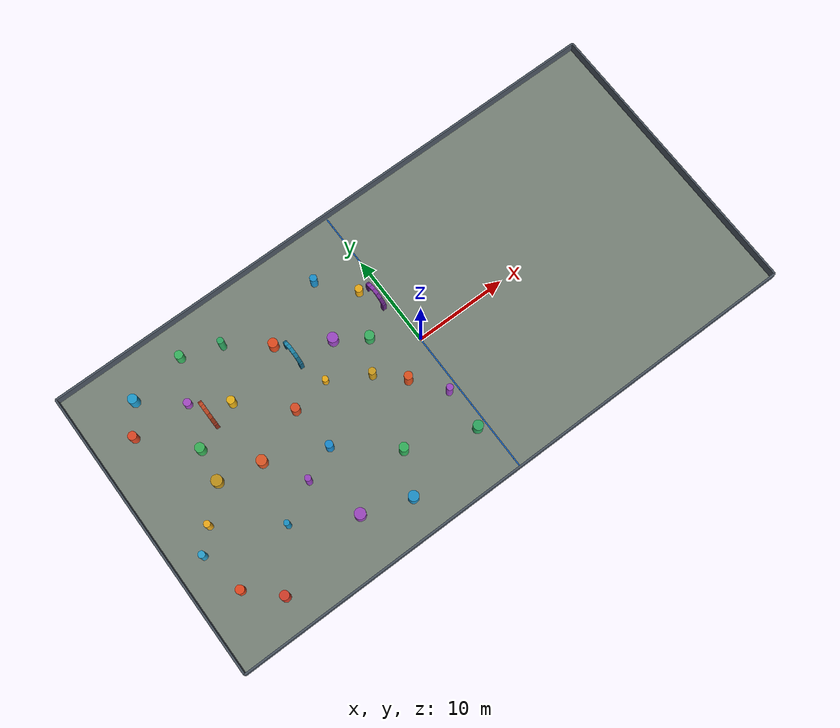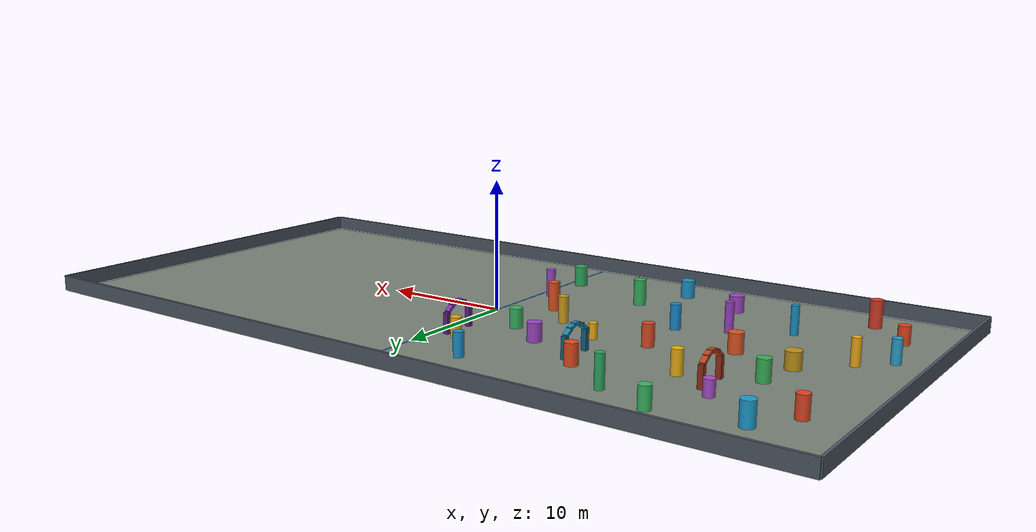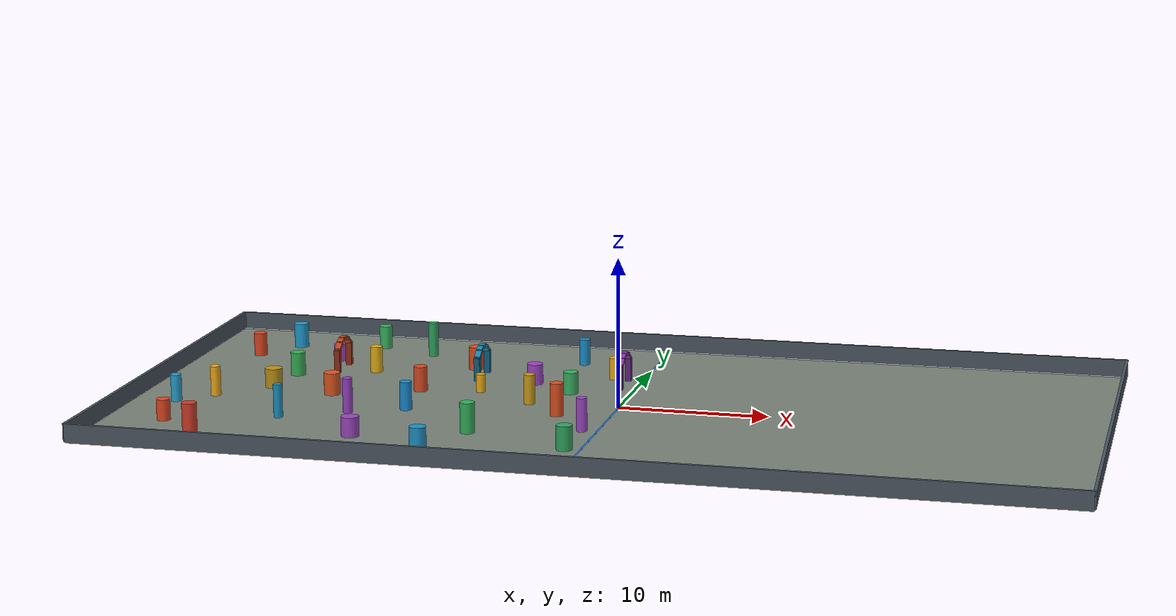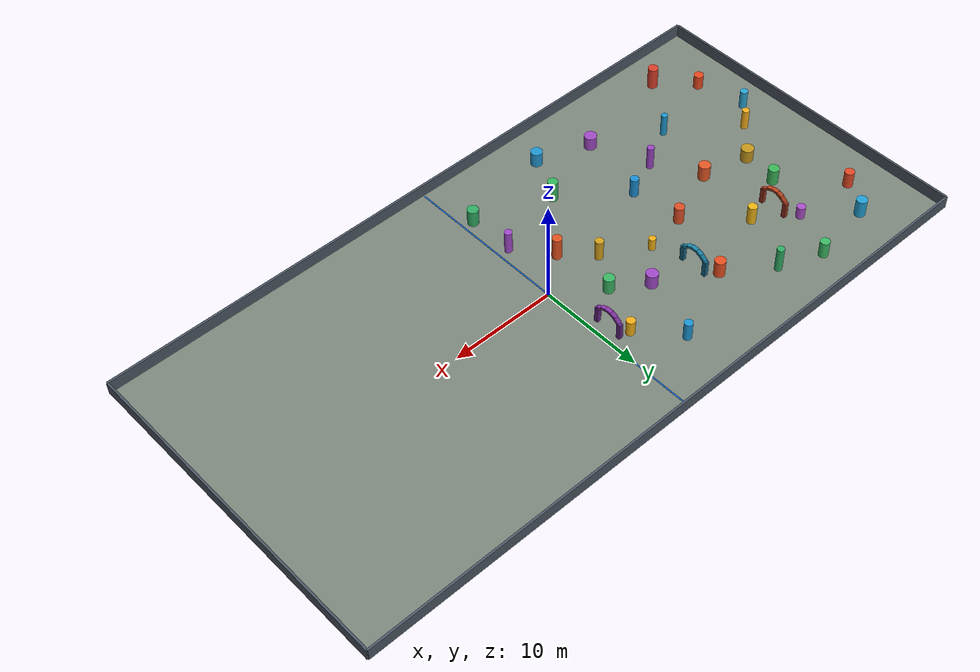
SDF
<sdf version="1.9">
 <world name="tower">
  <physics name="physics" type="ignored">
   <max_step_size>0.001</max_step_size>
   <real_time_factor>1.0</real_time_factor>
  </physics>
  <gravity>0 0 -9.81</gravity>
  <plugin filename="ignition-gazebo-physics-system" name="ignition::gazebo::systems::Physics"/>
  <plugin filename="ignition-gazebo-user-commands-system" name="ignition::gazebo::systems::UserCommands"/>
  <plugin filename="ignition-gazebo-scene-broadcaster-system" name="ignition::gazebo::systems::SceneBroadcaster"/>
  <plugin filename="ignition-gazebo-sensors-system" name="ignition::gazebo::systems::Sensors">
   <render_engine>ogre2</render_engine>
  </plugin>
  <scene>
   <ambient>0.45 0.45 0.45 1</ambient>
   <background>0.72 0.80 0.88 1</background>
   <shadows>true</shadows>
  </scene>
  <light name="sun" type="directional">
   <pose>0 0 20 0 0 0</pose>
   <diffuse>0.9 0.9 0.9 1</diffuse>
   <direction>-0.5 0.1 -0.9</direction>
  </light>
  <model name="test_ground">
   <static>true</static>
   <link name="ground">
    <collision name="collision">
     <geometry><plane><normal>0 0 1</normal><size>64 32</size></plane></geometry>
    </collision>
    <visual name="visual">
     <geometry><plane><normal>0 0 1</normal><size>64 32</size></plane></geometry>
     <material><ambient>0.48 0.52 0.48 1</ambient><diffuse>0.48 0.52 0.48 1</diffuse></material>
    </visual>
   </link>
  </model>
  <model name="arena_boundaries">
   <static>true</static>
   <link name="north_wall">
    <pose>0 16 0.60 0 0 0</pose>
    <collision name="collision"><geometry><box><size>64 0.20 1.20</size></box></geometry></collision>
    <visual name="visual">
     <geometry><box><size>64 0.20 1.20</size></box></geometry>
     <material><diffuse>0.30 0.34 0.39 1</diffuse></material>
    </visual>
   </link>
   <link name="south_wall">
    <pose>0 -16 0.60 0 0 0</pose>
    <collision name="collision"><geometry><box><size>64 0.20 1.20</size></box></geometry></collision>
    <visual name="visual">
     <geometry><box><size>64 0.20 1.20</size></box></geometry>
     <material><diffuse>0.30 0.34 0.39 1</diffuse></material>
    </visual>
   </link>
   <link name="west_wall">
    <pose>-32 0 0.60 0 0 0</pose>
    <collision name="collision"><geometry><box><size>0.20 32 1.20</size></box></geometry></collision>
    <visual name="visual">
     <geometry><box><size>0.20 32 1.20</size></box></geometry>
     <material><diffuse>0.30 0.34 0.39 1</diffuse></material>
    </visual>
   </link>
   <link name="east_wall">
    <pose>32 0 0.60 0 0 0</pose>
    <collision name="collision"><geometry><box><size>0.20 32 1.20</size></box></geometry></collision>
    <visual name="visual">
     <geometry><box><size>0.20 32 1.20</size></box></geometry>
     <material><diffuse>0.30 0.34 0.39 1</diffuse></material>
    </visual>
   </link>
  </model>
  <model name="zone_divider">
   <static>true</static>
   <pose>0 0 0.006 0 0 0</pose>
   <link name="stripe">
    <visual name="visual">
     <geometry><box><size>0.12 31.6 0.01</size></box></geometry>
     <material><ambient>0.10 0.45 0.90 1</ambient><diffuse>0.10 0.45 0.90 1</diffuse></material>
    </visual>
   </link>
  </model>
  <model name="flat_cylinder_field">
   <static>true</static>
   <link name="cylinder_01">
    <pose>-28 -9.5 0.70 0 0 0</pose>
    <collision name="collision">
     <geometry><cylinder><radius>0.45</radius><length>1.40</length></cylinder></geometry>
    </collision>
    <visual name="visual">
     <geometry><cylinder><radius>0.45</radius><length>1.40</length></cylinder></geometry>
     <material><diffuse>0.90 0.28 0.12 1</diffuse></material>
    </visual>
   </link>
   <link name="cylinder_02">
    <pose>-27 -2.8 1.00 0 0 0</pose>
    <collision name="collision">
     <geometry><cylinder><radius>0.34</radius><length>2.00</length></cylinder></geometry>
    </collision>
    <visual name="visual">
     <geometry><cylinder><radius>0.34</radius><length>2.00</length></cylinder></geometry>
     <material><diffuse>0.95 0.68 0.10 1</diffuse></material>
    </visual>
   </link>
   <link name="cylinder_03">
    <pose>-26 11.5 0.85 0 0 0</pose>
    <collision name="collision">
     <geometry><cylinder><radius>0.50</radius><length>1.70</length></cylinder></geometry>
    </collision>
    <visual name="visual">
     <geometry><cylinder><radius>0.50</radius><length>1.70</length></cylinder></geometry>
     <material><diffuse>0.12 0.62 0.82 1</diffuse></material>
    </visual>
   </link>
   <link name="cylinder_04">
    <pose>-23.5 3.7 0.80 0 0 0</pose>
    <collision name="collision">
     <geometry><cylinder><radius>0.50</radius><length>1.60</length></cylinder></geometry>
    </collision>
    <visual name="visual">
     <geometry><cylinder><radius>0.50</radius><length>1.60</length></cylinder></geometry>
     <material><diffuse>0.22 0.70 0.34 1</diffuse></material>
    </visual>
   </link>
   <link name="cylinder_05">
    <pose>-22 8.2 0.60 0 0 0</pose>
    <collision name="collision">
     <geometry><cylinder><radius>0.40</radius><length>1.20</length></cylinder></geometry>
    </collision>
    <visual name="visual">
     <geometry><cylinder><radius>0.40</radius><length>1.20</length></cylinder></geometry>
     <material><diffuse>0.66 0.30 0.78 1</diffuse></material>
    </visual>
   </link>
   <link name="cylinder_06">
    <pose>-21 -7.2 1.10 0 0 0</pose>
    <collision name="collision">
     <geometry><cylinder><radius>0.30</radius><length>2.20</length></cylinder></geometry>
    </collision>
    <visual name="visual">
     <geometry><cylinder><radius>0.30</radius><length>2.20</length></cylinder></geometry>
     <material><diffuse>0.10 0.58 0.78 1</diffuse></material>
    </visual>
   </link>
   <link name="cylinder_07">
    <pose>-19.5 -0.8 0.75 0 0 0</pose>
    <collision name="collision">
     <geometry><cylinder><radius>0.55</radius><length>1.50</length></cylinder></geometry>
    </collision>
    <visual name="visual">
     <geometry><cylinder><radius>0.55</radius><length>1.50</length></cylinder></geometry>
     <material><diffuse>0.88 0.34 0.14 1</diffuse></material>
    </visual>
   </link>
   <link name="cylinder_08">
    <pose>-18.5 5.7 0.90 0 0 0</pose>
    <collision name="collision">
     <geometry><cylinder><radius>0.42</radius><length>1.80</length></cylinder></geometry>
    </collision>
    <visual name="visual">
     <geometry><cylinder><radius>0.42</radius><length>1.80</length></cylinder></geometry>
     <material><diffuse>0.92 0.70 0.08 1</diffuse></material>
    </visual>
   </link>
   <link name="cylinder_09">
    <pose>-16 11.0 1.20 0 0 0</pose>
    <collision name="collision">
     <geometry><cylinder><radius>0.34</radius><length>2.40</length></cylinder></geometry>
    </collision>
    <visual name="visual">
     <geometry><cylinder><radius>0.34</radius><length>2.40</length></cylinder></geometry>
     <material><diffuse>0.18 0.66 0.38 1</diffuse></material>
    </visual>
   </link>
   <link name="cylinder_10">
    <pose>-15 -10.5 0.65 0 0 0</pose>
    <collision name="collision">
     <geometry><cylinder><radius>0.58</radius><length>1.30</length></cylinder></geometry>
    </collision>
    <visual name="visual">
     <geometry><cylinder><radius>0.58</radius><length>1.30</length></cylinder></geometry>
     <material><diffuse>0.62 0.28 0.76 1</diffuse></material>
    </visual>
   </link>
   <link name="cylinder_11">
    <pose>-13.5 -3.5 0.95 0 0 0</pose>
    <collision name="collision">
     <geometry><cylinder><radius>0.40</radius><length>1.90</length></cylinder></geometry>
    </collision>
    <visual name="visual">
     <geometry><cylinder><radius>0.40</radius><length>1.90</length></cylinder></geometry>
     <material><diffuse>0.10 0.55 0.82 1</diffuse></material>
    </visual>
   </link>
   <link name="cylinder_12">
    <pose>-12 8.0 0.80 0 0 0</pose>
    <collision name="collision">
     <geometry><cylinder><radius>0.50</radius><length>1.60</length></cylinder></geometry>
    </collision>
    <visual name="visual">
     <geometry><cylinder><radius>0.50</radius><length>1.60</length></cylinder></geometry>
     <material><diffuse>0.90 0.30 0.12 1</diffuse></material>
    </visual>
   </link>
   <link name="cylinder_13">
    <pose>-10 2.1 0.60 0 0 0</pose>
    <collision name="collision">
     <geometry><cylinder><radius>0.32</radius><length>1.20</length></cylinder></geometry>
    </collision>
    <visual name="visual">
     <geometry><cylinder><radius>0.32</radius><length>1.20</length></cylinder></geometry>
     <material><diffuse>0.94 0.68 0.08 1</diffuse></material>
    </visual>
   </link>
   <link name="cylinder_14">
    <pose>-8 -8.0 1.00 0 0 0</pose>
    <collision name="collision">
     <geometry><cylinder><radius>0.48</radius><length>2.00</length></cylinder></geometry>
    </collision>
    <visual name="visual">
     <geometry><cylinder><radius>0.48</radius><length>2.00</length></cylinder></geometry>
     <material><diffuse>0.20 0.70 0.36 1</diffuse></material>
    </visual>
   </link>
   <link name="cylinder_15">
    <pose>-7 5.0 0.70 0 0 0</pose>
    <collision name="collision">
     <geometry><cylinder><radius>0.55</radius><length>1.40</length></cylinder></geometry>
    </collision>
    <visual name="visual">
     <geometry><cylinder><radius>0.55</radius><length>1.40</length></cylinder></geometry>
     <material><diffuse>0.62 0.28 0.78 1</diffuse></material>
    </visual>
   </link>
   <link name="cylinder_16">
    <pose>-5 11.0 0.90 0 0 0</pose>
    <collision name="collision">
     <geometry><cylinder><radius>0.38</radius><length>1.80</length></cylinder></geometry>
    </collision>
    <visual name="visual">
     <geometry><cylinder><radius>0.38</radius><length>1.80</length></cylinder></geometry>
     <material><diffuse>0.10 0.58 0.82 1</diffuse></material>
    </visual>
   </link>
   <link name="cylinder_17">
    <pose>-3.5 -2.7 1.10 0 0 0</pose>
    <collision name="collision">
     <geometry><cylinder><radius>0.44</radius><length>2.20</length></cylinder></geometry>
    </collision>
    <visual name="visual">
     <geometry><cylinder><radius>0.44</radius><length>2.20</length></cylinder></geometry>
     <material><diffuse>0.88 0.32 0.12 1</diffuse></material>
    </visual>
   </link>
   <link name="cylinder_18">
    <pose>-2 7.5 0.75 0 0 0</pose>
    <collision name="collision">
     <geometry><cylinder><radius>0.40</radius><length>1.50</length></cylinder></geometry>
    </collision>
    <visual name="visual">
     <geometry><cylinder><radius>0.40</radius><length>1.50</length></cylinder></geometry>
     <material><diffuse>0.94 0.68 0.08 1</diffuse></material>
    </visual>
   </link>
   <link name="cylinder_19">
    <pose>-1 -10.5 0.80 0 0 0</pose>
    <collision name="collision">
     <geometry><cylinder><radius>0.52</radius><length>1.60</length></cylinder></geometry>
    </collision>
    <visual name="visual">
     <geometry><cylinder><radius>0.52</radius><length>1.60</length></cylinder></geometry>
     <material><diffuse>0.18 0.66 0.38 1</diffuse></material>
    </visual>
   </link>
   <link name="cylinder_20">
    <pose>-29 -4.8 0.90 0 0 0</pose>
    <collision name="collision">
     <geometry><cylinder><radius>0.36</radius><length>1.80</length></cylinder></geometry>
    </collision>
    <visual name="visual">
     <geometry><cylinder><radius>0.36</radius><length>1.80</length></cylinder></geometry>
     <material><diffuse>0.16 0.64 0.82 1</diffuse></material>
    </visual>
   </link>
   <link name="cylinder_21">
    <pose>-25 -12.5 1.05 0 0 0</pose>
    <collision name="collision">
     <geometry><cylinder><radius>0.48</radius><length>2.10</length></cylinder></geometry>
    </collision>
    <visual name="visual">
     <geometry><cylinder><radius>0.48</radius><length>2.10</length></cylinder></geometry>
     <material><diffuse>0.84 0.24 0.16 1</diffuse></material>
    </visual>
   </link>
   <link name="cylinder_22">
    <pose>-24 0.2 0.65 0 0 0</pose>
    <collision name="collision">
     <geometry><cylinder><radius>0.58</radius><length>1.30</length></cylinder></geometry>
    </collision>
    <visual name="visual">
     <geometry><cylinder><radius>0.58</radius><length>1.30</length></cylinder></geometry>
     <material><diffuse>0.76 0.58 0.10 1</diffuse></material>
    </visual>
   </link>
   <link name="cylinder_23">
    <pose>-20 12.5 0.80 0 0 0</pose>
    <collision name="collision">
     <geometry><cylinder><radius>0.44</radius><length>1.60</length></cylinder></geometry>
    </collision>
    <visual name="visual">
     <geometry><cylinder><radius>0.44</radius><length>1.60</length></cylinder></geometry>
     <material><diffuse>0.22 0.72 0.38 1</diffuse></material>
    </visual>
   </link>
   <link name="cylinder_24">
    <pose>-17 -5.0 1.15 0 0 0</pose>
    <collision name="collision">
     <geometry><cylinder><radius>0.33</radius><length>2.30</length></cylinder></geometry>
    </collision>
    <visual name="visual">
     <geometry><cylinder><radius>0.33</radius><length>2.30</length></cylinder></geometry>
     <material><diffuse>0.60 0.26 0.76 1</diffuse></material>
    </visual>
   </link>
   <link name="cylinder_25">
    <pose>-14 1.4 0.85 0 0 0</pose>
    <collision name="collision">
     <geometry><cylinder><radius>0.46</radius><length>1.70</length></cylinder></geometry>
    </collision>
    <visual name="visual">
     <geometry><cylinder><radius>0.46</radius><length>1.70</length></cylinder></geometry>
     <material><diffuse>0.86 0.30 0.14 1</diffuse></material>
    </visual>
   </link>
   <link name="cylinder_26">
    <pose>-10 -12.2 0.70 0 0 0</pose>
    <collision name="collision">
     <geometry><cylinder><radius>0.54</radius><length>1.40</length></cylinder></geometry>
    </collision>
    <visual name="visual">
     <geometry><cylinder><radius>0.54</radius><length>1.40</length></cylinder></geometry>
     <material><diffuse>0.12 0.58 0.80 1</diffuse></material>
    </visual>
   </link>
   <link name="cylinder_27">
    <pose>-6 -0.2 1.00 0 0 0</pose>
    <collision name="collision">
     <geometry><cylinder><radius>0.38</radius><length>2.00</length></cylinder></geometry>
    </collision>
    <visual name="visual">
     <geometry><cylinder><radius>0.38</radius><length>2.00</length></cylinder></geometry>
     <material><diffuse>0.82 0.62 0.10 1</diffuse></material>
    </visual>
   </link>
   <link name="cylinder_28">
    <pose>-4 3.0 0.75 0 0 0</pose>
    <collision name="collision">
     <geometry><cylinder><radius>0.50</radius><length>1.50</length></cylinder></geometry>
    </collision>
    <visual name="visual">
     <geometry><cylinder><radius>0.50</radius><length>1.50</length></cylinder></geometry>
     <material><diffuse>0.22 0.70 0.38 1</diffuse></material>
    </visual>
   </link>
   <link name="cylinder_29">
    <pose>-1 -6.0 1.10 0 0 0</pose>
    <collision name="collision">
     <geometry><cylinder><radius>0.35</radius><length>2.20</length></cylinder></geometry>
    </collision>
    <visual name="visual">
     <geometry><cylinder><radius>0.35</radius><length>2.20</length></cylinder></geometry>
     <material><diffuse>0.62 0.28 0.78 1</diffuse></material>
    </visual>
   </link>
   <link name="cylinder_30">
    <pose>-28 8.5 0.80 0 0 0</pose>
    <collision name="collision">
     <geometry><cylinder><radius>0.45</radius><length>1.60</length></cylinder></geometry>
    </collision>
    <visual name="visual">
     <geometry><cylinder><radius>0.45</radius><length>1.60</length></cylinder></geometry>
     <material><diffuse>0.88 0.28 0.14 1</diffuse></material>
    </visual>
   </link>
  </model>
  <model name="flat_arch_field">
   <static>true</static>
   <link name="arch_01_left">
    <pose>-21 4.75 0.80 0 0 0</pose>
    <collision name="collision"><geometry><box><size>0.40 0.38 1.60</size></box></geometry></collision>
    <visual name="visual">
     <geometry><box><size>0.40 0.38 1.60</size></box></geometry>
     <material><diffuse>0.56 0.18 0.10 1</diffuse></material>
    </visual>
   </link>
   <link name="arch_01_right">
    <pose>-21 7.25 0.80 0 0 0</pose>
    <collision name="collision"><geometry><box><size>0.40 0.38 1.60</size></box></geometry></collision>
    <visual name="visual">
     <geometry><box><size>0.40 0.38 1.60</size></box></geometry>
     <material><diffuse>0.56 0.18 0.10 1</diffuse></material>
    </visual>
   </link>
   <link name="arch_01_crown_1">
    <pose>-21 5.08 1.80 0.60 0 0</pose>
    <collision name="collision"><geometry><box><size>0.40 0.68 0.22</size></box></geometry></collision>
    <visual name="visual">
     <geometry><box><size>0.40 0.68 0.22</size></box></geometry>
     <material><diffuse>0.72 0.26 0.12 1</diffuse></material>
    </visual>
   </link>
   <link name="arch_01_crown_2">
    <pose>-21 5.52 2.08 0.30 0 0</pose>
    <collision name="collision"><geometry><box><size>0.40 0.62 0.22</size></box></geometry></collision>
    <visual name="visual">
     <geometry><box><size>0.40 0.62 0.22</size></box></geometry>
     <material><diffuse>0.72 0.26 0.12 1</diffuse></material>
    </visual>
   </link>
   <link name="arch_01_crown_3">
    <pose>-21 6.00 2.18 0 0 0</pose>
    <collision name="collision"><geometry><box><size>0.40 0.62 0.22</size></box></geometry></collision>
    <visual name="visual">
     <geometry><box><size>0.40 0.62 0.22</size></box></geometry>
     <material><diffuse>0.72 0.26 0.12 1</diffuse></material>
    </visual>
   </link>
   <link name="arch_01_crown_4">
    <pose>-21 6.48 2.08 -0.30 0 0</pose>
    <collision name="collision"><geometry><box><size>0.40 0.62 0.22</size></box></geometry></collision>
    <visual name="visual">
     <geometry><box><size>0.40 0.62 0.22</size></box></geometry>
     <material><diffuse>0.72 0.26 0.12 1</diffuse></material>
    </visual>
   </link>
   <link name="arch_01_crown_5">
    <pose>-21 6.92 1.80 -0.60 0 0</pose>
    <collision name="collision"><geometry><box><size>0.40 0.68 0.22</size></box></geometry></collision>
    <visual name="visual">
     <geometry><box><size>0.40 0.68 0.22</size></box></geometry>
     <material><diffuse>0.72 0.26 0.12 1</diffuse></material>
    </visual>
   </link>
   <link name="arch_02_left">
    <pose>-11 4.75 0.80 0 0 0</pose>
    <collision name="collision"><geometry><box><size>0.40 0.38 1.60</size></box></geometry></collision>
    <visual name="visual">
     <geometry><box><size>0.40 0.38 1.60</size></box></geometry>
     <material><diffuse>0.08 0.38 0.50 1</diffuse></material>
    </visual>
   </link>
   <link name="arch_02_right">
    <pose>-11 7.25 0.80 0 0 0</pose>
    <collision name="collision"><geometry><box><size>0.40 0.38 1.60</size></box></geometry></collision>
    <visual name="visual">
     <geometry><box><size>0.40 0.38 1.60</size></box></geometry>
     <material><diffuse>0.08 0.38 0.50 1</diffuse></material>
    </visual>
   </link>
   <link name="arch_02_crown_1">
    <pose>-11 5.08 1.80 0.60 0 0</pose>
    <collision name="collision"><geometry><box><size>0.40 0.68 0.22</size></box></geometry></collision>
    <visual name="visual">
     <geometry><box><size>0.40 0.68 0.22</size></box></geometry>
     <material><diffuse>0.10 0.52 0.66 1</diffuse></material>
    </visual>
   </link>
   <link name="arch_02_crown_2">
    <pose>-11 5.52 2.08 0.30 0 0</pose>
    <collision name="collision"><geometry><box><size>0.40 0.62 0.22</size></box></geometry></collision>
    <visual name="visual">
     <geometry><box><size>0.40 0.62 0.22</size></box></geometry>
     <material><diffuse>0.10 0.52 0.66 1</diffuse></material>
    </visual>
   </link>
   <link name="arch_02_crown_3">
    <pose>-11 6.00 2.18 0 0 0</pose>
    <collision name="collision"><geometry><box><size>0.40 0.62 0.22</size></box></geometry></collision>
    <visual name="visual">
     <geometry><box><size>0.40 0.62 0.22</size></box></geometry>
     <material><diffuse>0.10 0.52 0.66 1</diffuse></material>
    </visual>
   </link>
   <link name="arch_02_crown_4">
    <pose>-11 6.48 2.08 -0.30 0 0</pose>
    <collision name="collision"><geometry><box><size>0.40 0.62 0.22</size></box></geometry></collision>
    <visual name="visual">
     <geometry><box><size>0.40 0.62 0.22</size></box></geometry>
     <material><diffuse>0.10 0.52 0.66 1</diffuse></material>
    </visual>
   </link>
   <link name="arch_02_crown_5">
    <pose>-11 6.92 1.80 -0.60 0 0</pose>
    <collision name="collision"><geometry><box><size>0.40 0.68 0.22</size></box></geometry></collision>
    <visual name="visual">
     <geometry><box><size>0.40 0.68 0.22</size></box></geometry>
     <material><diffuse>0.10 0.52 0.66 1</diffuse></material>
    </visual>
   </link>
   <link name="arch_03_left">
    <pose>-1 4.75 0.80 0 0 0</pose>
    <collision name="collision"><geometry><box><size>0.40 0.38 1.60</size></box></geometry></collision>
    <visual name="visual">
     <geometry><box><size>0.40 0.38 1.60</size></box></geometry>
     <material><diffuse>0.38 0.14 0.50 1</diffuse></material>
    </visual>
   </link>
   <link name="arch_03_right">
    <pose>-1 7.25 0.80 0 0 0</pose>
    <collision name="collision"><geometry><box><size>0.40 0.38 1.60</size></box></geometry></collision>
    <visual name="visual">
     <geometry><box><size>0.40 0.38 1.60</size></box></geometry>
     <material><diffuse>0.38 0.14 0.50 1</diffuse></material>
    </visual>
   </link>
   <link name="arch_03_crown_1">
    <pose>-1 5.08 1.80 0.60 0 0</pose>
    <collision name="collision"><geometry><box><size>0.40 0.68 0.22</size></box></geometry></collision>
    <visual name="visual">
     <geometry><box><size>0.40 0.68 0.22</size></box></geometry>
     <material><diffuse>0.52 0.20 0.66 1</diffuse></material>
    </visual>
   </link>
   <link name="arch_03_crown_2">
    <pose>-1 5.52 2.08 0.30 0 0</pose>
    <collision name="collision"><geometry><box><size>0.40 0.62 0.22</size></box></geometry></collision>
    <visual name="visual">
     <geometry><box><size>0.40 0.62 0.22</size></box></geometry>
     <material><diffuse>0.52 0.20 0.66 1</diffuse></material>
    </visual>
   </link>
   <link name="arch_03_crown_3">
    <pose>-1 6.00 2.18 0 0 0</pose>
    <collision name="collision"><geometry><box><size>0.40 0.62 0.22</size></box></geometry></collision>
    <visual name="visual">
     <geometry><box><size>0.40 0.62 0.22</size></box></geometry>
     <material><diffuse>0.52 0.20 0.66 1</diffuse></material>
    </visual>
   </link>
   <link name="arch_03_crown_4">
    <pose>-1 6.48 2.08 -0.30 0 0</pose>
    <collision name="collision"><geometry><box><size>0.40 0.62 0.22</size></box></geometry></collision>
    <visual name="visual">
     <geometry><box><size>0.40 0.62 0.22</size></box></geometry>
     <material><diffuse>0.52 0.20 0.66 1</diffuse></material>
    </visual>
   </link>
   <link name="arch_03_crown_5">
    <pose>-1 6.92 1.80 -0.60 0 0</pose>
    <collision name="collision"><geometry><box><size>0.40 0.68 0.22</size></box></geometry></collision>
    <visual name="visual">
     <geometry><box><size>0.40 0.68 0.22</size></box></geometry>
     <material><diffuse>0.52 0.20 0.66 1</diffuse></material>
    </visual>
   </link>
  </model>
 </world>
</sdf>
